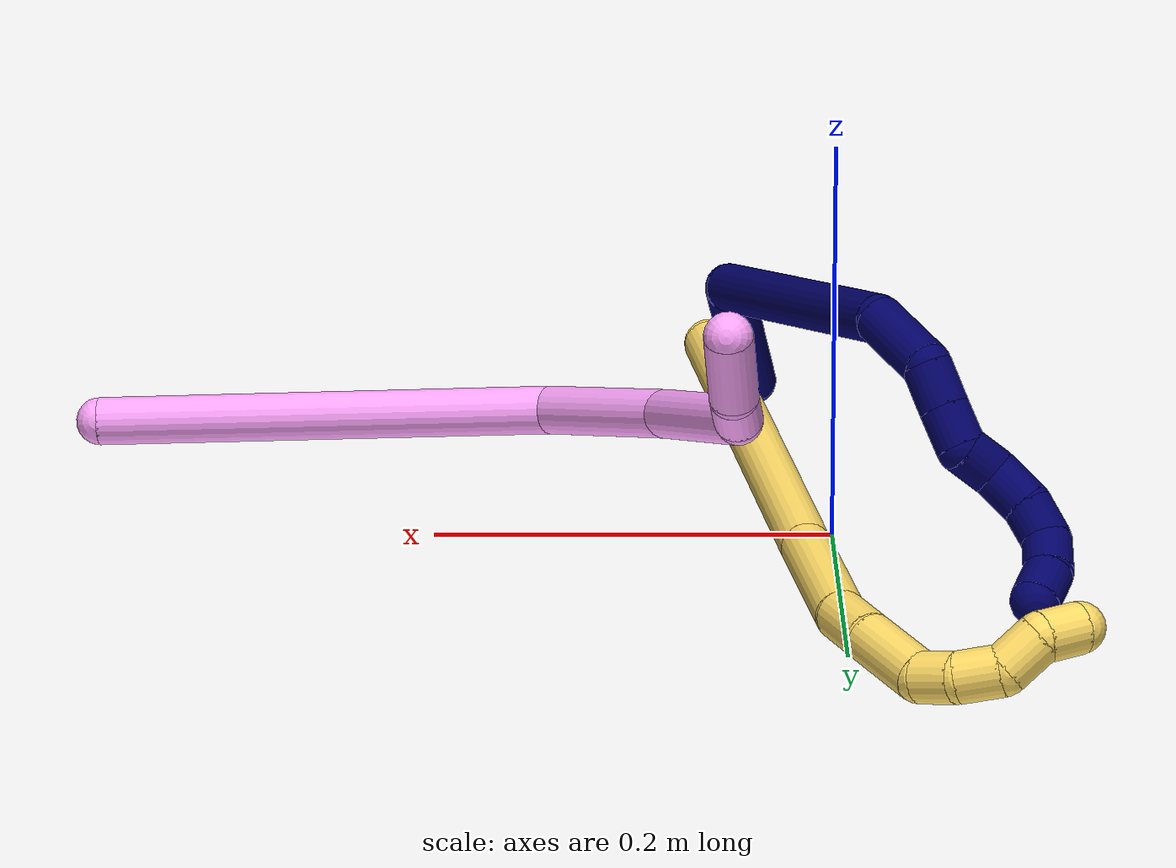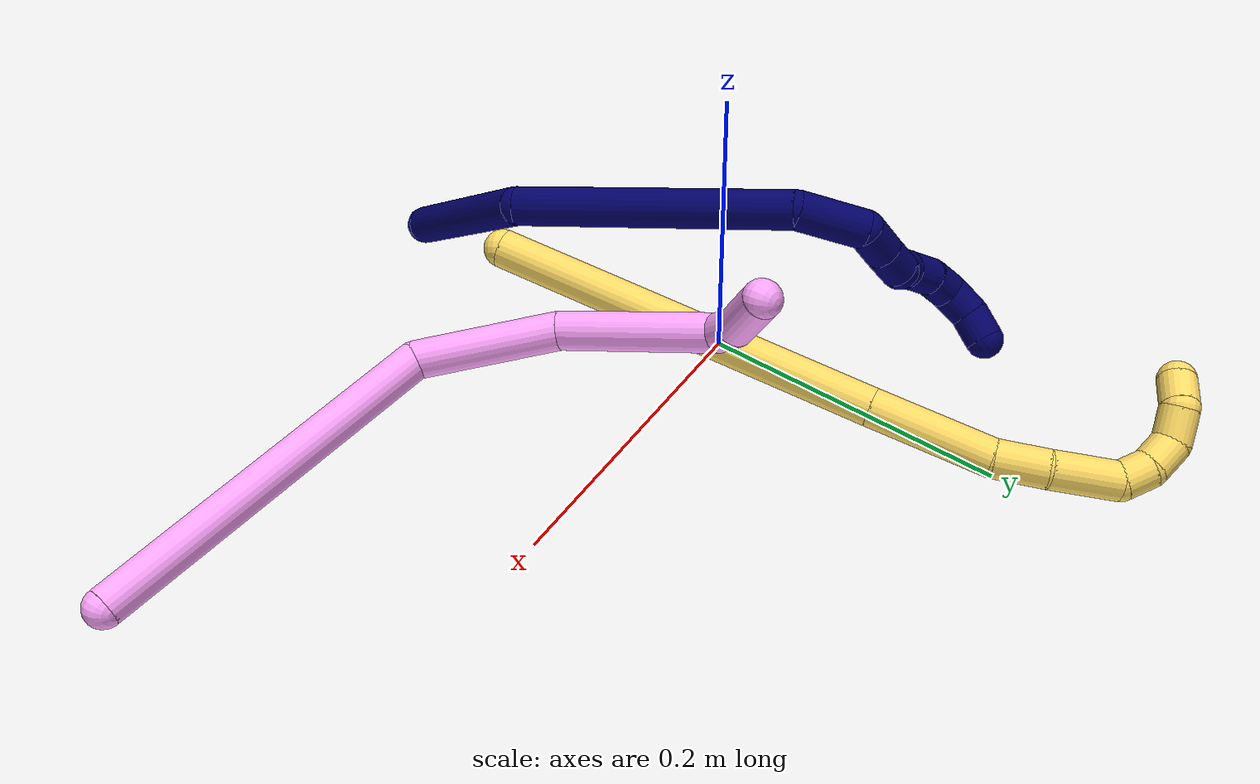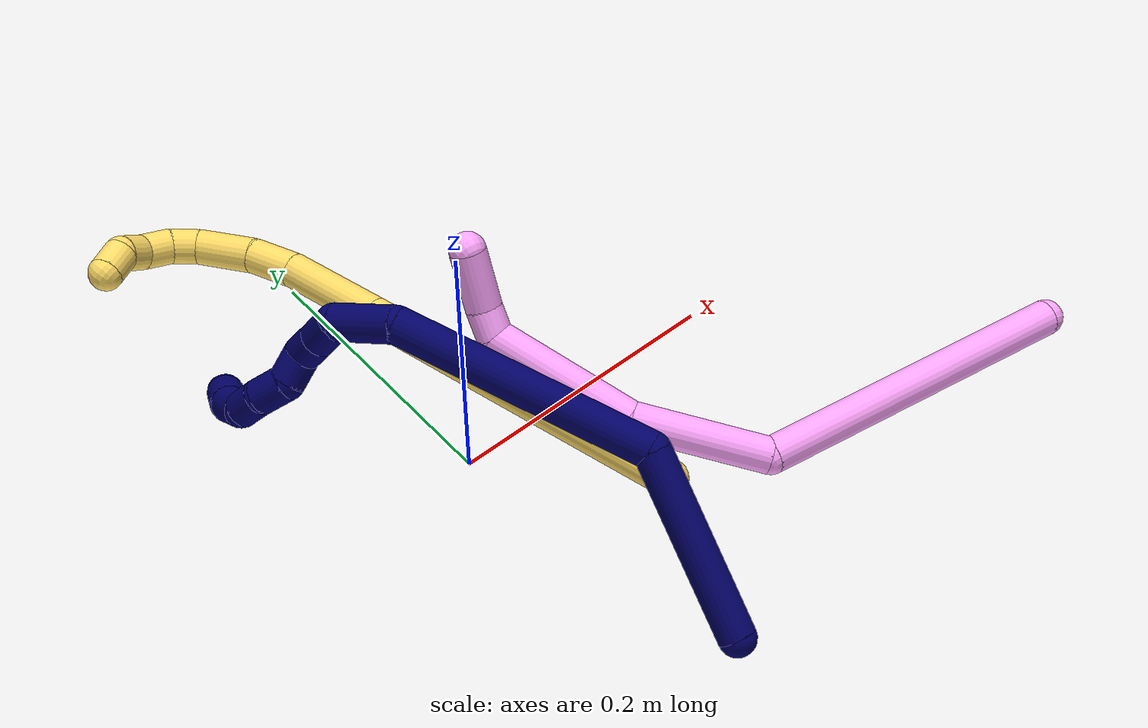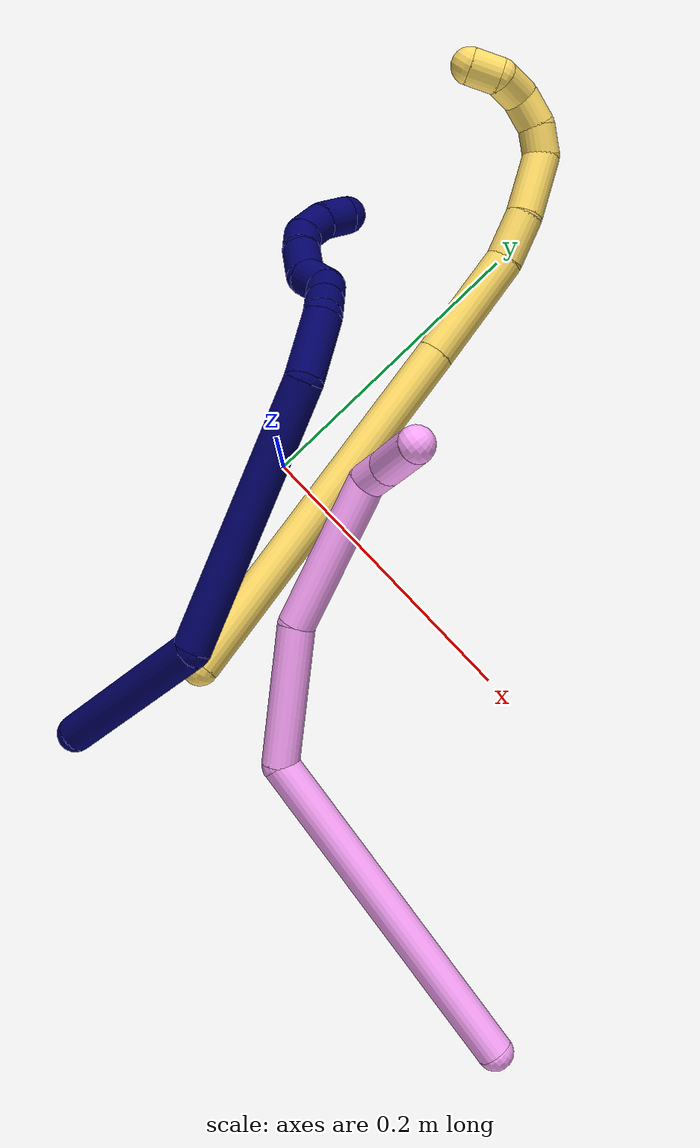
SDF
<sdf version="1.7">
 <world name="default">
  <model name="4">
   <static>0</static>
   <link name="4">
    <collision name="collision-cylinder-e_1_1_4">
     <pose>-0.107527 0.051839 -0.004027 -1.64833 -1.12039 1.19139</pose>
     <geometry><cylinder><radius>0.0125</radius><length>0.238876</length></cylinder></geometry>
     <surface>
      <friction><ode><mu>1.16</mu><mu2>1.16</mu2><slip1>0</slip1><slip2>0</slip2></ode></friction>
      <contact><ode><kp>1e+06</kp><kd>1</kd><max_vel>0</max_vel><min_depth>0.001</min_depth></ode></contact>
     </surface>
    </collision>
    <visual name="visual-cylinder-e_1_1_4">
     <pose>-0.107527 0.051839 -0.004027 -1.64833 -1.12039 1.19139</pose>
     <geometry><cylinder><radius>0.0125</radius><length>0.238876</length></cylinder></geometry>
     <material><ambient>1 0.65098 0.996078 1</ambient></material>
    </visual>
    <collision name="collision-cylinder-e_2_4_5">
     <pose>-0.245227 0.117463 -0.041724 -2.75298 -0.692384 2.14277</pose>
     <geometry><cylinder><radius>0.0125</radius><length>0.094532</length></cylinder></geometry>
     <surface>
      <friction><ode><mu>1.16</mu><mu2>1.16</mu2><slip1>0</slip1><slip2>0</slip2></ode></friction>
      <contact><ode><kp>1e+06</kp><kd>1</kd><max_vel>0</max_vel><min_depth>0.001</min_depth></ode></contact>
     </surface>
    </collision>
    <visual name="visual-cylinder-e_2_4_5">
     <pose>-0.245227 0.117463 -0.041724 -2.75298 -0.692384 2.14277</pose>
     <geometry><cylinder><radius>0.0125</radius><length>0.094532</length></cylinder></geometry>
     <material><ambient>1 0.65098 0.996078 1</ambient></material>
    </visual>
    <collision name="collision-cylinder-e_3_5_6">
     <pose>-0.295717 0.140423 -0.122538 -2.94938 -0.400183 2.25411</pose>
     <geometry><cylinder><radius>0.0125</radius><length>0.104299</length></cylinder></geometry>
     <surface>
      <friction><ode><mu>1.16</mu><mu2>1.16</mu2><slip1>0</slip1><slip2>0</slip2></ode></friction>
      <contact><ode><kp>1e+06</kp><kd>1</kd><max_vel>0</max_vel><min_depth>0.001</min_depth></ode></contact>
     </surface>
    </collision>
    <visual name="visual-cylinder-e_3_5_6">
     <pose>-0.295717 0.140423 -0.122538 -2.94938 -0.400183 2.25411</pose>
     <geometry><cylinder><radius>0.0125</radius><length>0.104299</length></cylinder></geometry>
     <material><ambient>1 0.65098 0.996078 1</ambient></material>
    </visual>
    <collision name="collision-cylinder-e_4_6_7">
     <pose>-0.313338 0.154614 -0.178378 -2.61845 0.262364 -0.915837</pose>
     <geometry><cylinder><radius>0.0125</radius><length>0.020788</length></cylinder></geometry>
     <surface>
      <friction><ode><mu>1.16</mu><mu2>1.16</mu2><slip1>0</slip1><slip2>0</slip2></ode></friction>
      <contact><ode><kp>1e+06</kp><kd>1</kd><max_vel>0</max_vel><min_depth>0.001</min_depth></ode></contact>
     </surface>
    </collision>
    <visual name="visual-cylinder-e_4_6_7">
     <pose>-0.313338 0.154614 -0.178378 -2.61845 0.262364 -0.915837</pose>
     <geometry><cylinder><radius>0.0125</radius><length>0.020788</length></cylinder></geometry>
     <material><ambient>1 0.65098 0.996078 1</ambient></material>
    </visual>
    <collision name="collision-cylinder-e_5_7_2">
     <pose>-0.303975 0.17368 -0.200813 -2.34495 0.327088 -0.747421</pose>
     <geometry><cylinder><radius>0.0125</radius><length>0.041504</length></cylinder></geometry>
     <surface>
      <friction><ode><mu>1.16</mu><mu2>1.16</mu2><slip1>0</slip1><slip2>0</slip2></ode></friction>
      <contact><ode><kp>1e+06</kp><kd>1</kd><max_vel>0</max_vel><min_depth>0.001</min_depth></ode></contact>
     </surface>
    </collision>
    <visual name="visual-cylinder-e_5_7_2">
     <pose>-0.303975 0.17368 -0.200813 -2.34495 0.327088 -0.747421</pose>
     <geometry><cylinder><radius>0.0125</radius><length>0.041504</length></cylinder></geometry>
     <material><ambient>1 0.65098 0.996078 1</ambient></material>
    </visual>
    <collision name="collision-sphere-2">
     <pose>-0.297308 0.187732 -0.214551 0 -0 0</pose>
     <geometry><sphere><radius>0.0125</radius></sphere></geometry>
     <surface>
      <friction><ode><mu>1.16</mu><mu2>1.16</mu2><slip1>0</slip1><slip2>0</slip2></ode></friction>
      <contact><ode><kp>1e+06</kp><kd>1</kd><max_vel>0</max_vel><min_depth>0.001</min_depth></ode></contact>
     </surface>
    </collision>
    <visual name="visual-sphere-2">
     <pose>-0.297308 0.187732 -0.214551 0 -0 0</pose>
     <geometry><sphere><radius>0.0125</radius></sphere></geometry>
     <material><ambient>1 0.65098 0.996078 1</ambient></material>
    </visual>
    <collision name="collision-sphere-7">
     <pose>-0.310642 0.159629 -0.187074 0 -0 0</pose>
     <geometry><sphere><radius>0.0125</radius></sphere></geometry>
     <surface>
      <friction><ode><mu>1.16</mu><mu2>1.16</mu2><slip1>0</slip1><slip2>0</slip2></ode></friction>
      <contact><ode><kp>1e+06</kp><kd>1</kd><max_vel>0</max_vel><min_depth>0.001</min_depth></ode></contact>
     </surface>
    </collision>
    <visual name="visual-sphere-7">
     <pose>-0.310642 0.159629 -0.187074 0 -0 0</pose>
     <geometry><sphere><radius>0.0125</radius></sphere></geometry>
     <material><ambient>1 0.65098 0.996078 1</ambient></material>
    </visual>
    <collision name="collision-sphere-6">
     <pose>-0.316034 0.149599 -0.169682 0 -0 0</pose>
     <geometry><sphere><radius>0.0125</radius></sphere></geometry>
     <surface>
      <friction><ode><mu>1.16</mu><mu2>1.16</mu2><slip1>0</slip1><slip2>0</slip2></ode></friction>
      <contact><ode><kp>1e+06</kp><kd>1</kd><max_vel>0</max_vel><min_depth>0.001</min_depth></ode></contact>
     </surface>
    </collision>
    <visual name="visual-sphere-6">
     <pose>-0.316034 0.149599 -0.169682 0 -0 0</pose>
     <geometry><sphere><radius>0.0125</radius></sphere></geometry>
     <material><ambient>1 0.65098 0.996078 1</ambient></material>
    </visual>
    <collision name="collision-sphere-5">
     <pose>-0.2754 0.131248 -0.075393 0 -0 0</pose>
     <geometry><sphere><radius>0.0125</radius></sphere></geometry>
     <surface>
      <friction><ode><mu>1.16</mu><mu2>1.16</mu2><slip1>0</slip1><slip2>0</slip2></ode></friction>
      <contact><ode><kp>1e+06</kp><kd>1</kd><max_vel>0</max_vel><min_depth>0.001</min_depth></ode></contact>
     </surface>
    </collision>
    <visual name="visual-sphere-5">
     <pose>-0.2754 0.131248 -0.075393 0 -0 0</pose>
     <geometry><sphere><radius>0.0125</radius></sphere></geometry>
     <material><ambient>1 0.65098 0.996078 1</ambient></material>
    </visual>
    <collision name="collision-sphere-1">
     <geometry><sphere><radius>0.0125</radius></sphere></geometry>
     <surface>
      <friction><ode><mu>1.16</mu><mu2>1.16</mu2><slip1>0</slip1><slip2>0</slip2></ode></friction>
      <contact><ode><kp>1e+06</kp><kd>1</kd><max_vel>0</max_vel><min_depth>0.001</min_depth></ode></contact>
     </surface>
    </collision>
    <visual name="visual-sphere-1">
     <geometry><sphere><radius>0.0125</radius></sphere></geometry>
     <material><ambient>1 0.65098 0.996078 1</ambient></material>
    </visual>
    <collision name="collision-sphere-4">
     <pose>-0.215053 0.103678 -0.008054 0 -0 0</pose>
     <geometry><sphere><radius>0.0125</radius></sphere></geometry>
     <surface>
      <friction><ode><mu>1.16</mu><mu2>1.16</mu2><slip1>0</slip1><slip2>0</slip2></ode></friction>
      <contact><ode><kp>1e+06</kp><kd>1</kd><max_vel>0</max_vel><min_depth>0.001</min_depth></ode></contact>
     </surface>
    </collision>
    <visual name="visual-sphere-4">
     <pose>-0.215053 0.103678 -0.008054 0 -0 0</pose>
     <geometry><sphere><radius>0.0125</radius></sphere></geometry>
     <material><ambient>1 0.65098 0.996078 1</ambient></material>
    </visual>
    <inertial>
     <pose>-0.197681 0.097111 -0.059459 0 -0 0</pose>
     <mass>0.5</mass>
     <inertia>
      <ixx>0.000655</ixx>
      <ixy>0</ixy>
      <ixz>0</ixz>
      <iyy>0.001628</iyy>
      <iyz>0</iyz>
      <izz>0.000555</izz>
     </inertia>
    </inertial>
   </link>
   <pose>0.378631 -0.167894 0.01154 1.82999 -0.382852 -0.204085</pose>
  </model>
  <model name="5">
   <static>0</static>
   <link name="5">
    <collision name="collision-cylinder-e_1_1_4">
     <pose>-0.013844 0.055192 0.11492 -0.447739 -0.108167 0.024651</pose>
     <geometry><cylinder><radius>0.0125</radius><length>0.256472</length></cylinder></geometry>
     <surface>
      <friction><ode><mu>1.16</mu><mu2>1.16</mu2><slip1>0</slip1><slip2>0</slip2></ode></friction>
      <contact><ode><kp>1e+06</kp><kd>1</kd><max_vel>0</max_vel><min_depth>0.001</min_depth></ode></contact>
     </surface>
    </collision>
    <visual name="visual-cylinder-e_1_1_4">
     <pose>-0.013844 0.055192 0.11492 -0.447739 -0.108167 0.024651</pose>
     <geometry><cylinder><radius>0.0125</radius><length>0.256472</length></cylinder></geometry>
     <material><ambient>1 0.858824 0.4 1</ambient></material>
    </visual>
    <collision name="collision-cylinder-e_2_4_5">
     <pose>-0.032205 0.127178 0.265533 -0.43975 -0.114022 0.025509</pose>
     <geometry><cylinder><radius>0.0125</radius><length>0.079408</length></cylinder></geometry>
     <surface>
      <friction><ode><mu>1.16</mu><mu2>1.16</mu2><slip1>0</slip1><slip2>0</slip2></ode></friction>
      <contact><ode><kp>1e+06</kp><kd>1</kd><max_vel>0</max_vel><min_depth>0.001</min_depth></ode></contact>
     </surface>
    </collision>
    <visual name="visual-cylinder-e_2_4_5">
     <pose>-0.032205 0.127178 0.265533 -0.43975 -0.114022 0.025509</pose>
     <geometry><cylinder><radius>0.0125</radius><length>0.079408</length></cylinder></geometry>
     <material><ambient>1 0.858824 0.4 1</ambient></material>
    </visual>
    <collision name="collision-cylinder-e_3_5_6">
     <pose>-0.041269 0.148491 0.316745 -0.28344 -0.274212 0.039365</pose>
     <geometry><cylinder><radius>0.0125</radius><length>0.033582</length></cylinder></geometry>
     <surface>
      <friction><ode><mu>1.16</mu><mu2>1.16</mu2><slip1>0</slip1><slip2>0</slip2></ode></friction>
      <contact><ode><kp>1e+06</kp><kd>1</kd><max_vel>0</max_vel><min_depth>0.001</min_depth></ode></contact>
     </surface>
    </collision>
    <visual name="visual-cylinder-e_3_5_6">
     <pose>-0.041269 0.148491 0.316745 -0.28344 -0.274212 0.039365</pose>
     <geometry><cylinder><radius>0.0125</radius><length>0.033582</length></cylinder></geometry>
     <material><ambient>1 0.858824 0.4 1</ambient></material>
    </visual>
    <collision name="collision-cylinder-e_4_6_7">
     <pose>-0.055185 0.159573 0.351209 -0.333439 -0.437145 0.074723</pose>
     <geometry><cylinder><radius>0.0125</radius><length>0.044262</length></cylinder></geometry>
     <surface>
      <friction><ode><mu>1.16</mu><mu2>1.16</mu2><slip1>0</slip1><slip2>0</slip2></ode></friction>
      <contact><ode><kp>1e+06</kp><kd>1</kd><max_vel>0</max_vel><min_depth>0.001</min_depth></ode></contact>
     </surface>
    </collision>
    <visual name="visual-cylinder-e_4_6_7">
     <pose>-0.055185 0.159573 0.351209 -0.333439 -0.437145 0.074723</pose>
     <geometry><cylinder><radius>0.0125</radius><length>0.044262</length></cylinder></geometry>
     <material><ambient>1 0.858824 0.4 1</ambient></material>
    </visual>
    <collision name="collision-cylinder-e_5_7_8">
     <pose>-0.070927 0.163941 0.377716 0.28247 -0.680361 -0.100563</pose>
     <geometry><cylinder><radius>0.0125</radius><length>0.020259</length></cylinder></geometry>
     <surface>
      <friction><ode><mu>1.16</mu><mu2>1.16</mu2><slip1>0</slip1><slip2>0</slip2></ode></friction>
      <contact><ode><kp>1e+06</kp><kd>1</kd><max_vel>0</max_vel><min_depth>0.001</min_depth></ode></contact>
     </surface>
    </collision>
    <visual name="visual-cylinder-e_5_7_8">
     <pose>-0.070927 0.163941 0.377716 0.28247 -0.680361 -0.100563</pose>
     <geometry><cylinder><radius>0.0125</radius><length>0.020259</length></cylinder></geometry>
     <material><ambient>1 0.858824 0.4 1</ambient></material>
    </visual>
    <collision name="collision-cylinder-e_6_8_9">
     <pose>-0.085712 0.156786 0.390534 0.756487 -0.861138 -0.361064</pose>
     <geometry><cylinder><radius>0.0125</radius><length>0.02218</length></cylinder></geometry>
     <surface>
      <friction><ode><mu>1.16</mu><mu2>1.16</mu2><slip1>0</slip1><slip2>0</slip2></ode></friction>
      <contact><ode><kp>1e+06</kp><kd>1</kd><max_vel>0</max_vel><min_depth>0.001</min_depth></ode></contact>
     </surface>
    </collision>
    <visual name="visual-cylinder-e_6_8_9">
     <pose>-0.085712 0.156786 0.390534 0.756487 -0.861138 -0.361064</pose>
     <geometry><cylinder><radius>0.0125</radius><length>0.02218</length></cylinder></geometry>
     <material><ambient>1 0.858824 0.4 1</ambient></material>
    </visual>
    <collision name="collision-cylinder-e_7_9_10">
     <pose>-0.099043 0.141907 0.397938 1.35745 -0.451234 -0.366104</pose>
     <geometry><cylinder><radius>0.0125</radius><length>0.022556</length></cylinder></geometry>
     <surface>
      <friction><ode><mu>1.16</mu><mu2>1.16</mu2><slip1>0</slip1><slip2>0</slip2></ode></friction>
      <contact><ode><kp>1e+06</kp><kd>1</kd><max_vel>0</max_vel><min_depth>0.001</min_depth></ode></contact>
     </surface>
    </collision>
    <visual name="visual-cylinder-e_7_9_10">
     <pose>-0.099043 0.141907 0.397938 1.35745 -0.451234 -0.366104</pose>
     <geometry><cylinder><radius>0.0125</radius><length>0.022556</length></cylinder></geometry>
     <material><ambient>1 0.858824 0.4 1</ambient></material>
    </visual>
    <collision name="collision-cylinder-e_8_10_2">
     <pose>-0.112664 0.126237 0.397988 1.92074 -0.957739 -1.27692</pose>
     <geometry><cylinder><radius>0.0125</radius><length>0.021281</length></cylinder></geometry>
     <surface>
      <friction><ode><mu>1.16</mu><mu2>1.16</mu2><slip1>0</slip1><slip2>0</slip2></ode></friction>
      <contact><ode><kp>1e+06</kp><kd>1</kd><max_vel>0</max_vel><min_depth>0.001</min_depth></ode></contact>
     </surface>
    </collision>
    <visual name="visual-cylinder-e_8_10_2">
     <pose>-0.112664 0.126237 0.397988 1.92074 -0.957739 -1.27692</pose>
     <geometry><cylinder><radius>0.0125</radius><length>0.021281</length></cylinder></geometry>
     <material><ambient>1 0.858824 0.4 1</ambient></material>
    </visual>
    <collision name="collision-sphere-2">
     <pose>-0.121367 0.120485 0.395888 0 -0 0</pose>
     <geometry><sphere><radius>0.0125</radius></sphere></geometry>
     <surface>
      <friction><ode><mu>1.16</mu><mu2>1.16</mu2><slip1>0</slip1><slip2>0</slip2></ode></friction>
      <contact><ode><kp>1e+06</kp><kd>1</kd><max_vel>0</max_vel><min_depth>0.001</min_depth></ode></contact>
     </surface>
    </collision>
    <visual name="visual-sphere-2">
     <pose>-0.121367 0.120485 0.395888 0 -0 0</pose>
     <geometry><sphere><radius>0.0125</radius></sphere></geometry>
     <material><ambient>1 0.858824 0.4 1</ambient></material>
    </visual>
    <collision name="collision-sphere-10">
     <pose>-0.103961 0.131988 0.400087 0 -0 0</pose>
     <geometry><sphere><radius>0.0125</radius></sphere></geometry>
     <surface>
      <friction><ode><mu>1.16</mu><mu2>1.16</mu2><slip1>0</slip1><slip2>0</slip2></ode></friction>
      <contact><ode><kp>1e+06</kp><kd>1</kd><max_vel>0</max_vel><min_depth>0.001</min_depth></ode></contact>
     </surface>
    </collision>
    <visual name="visual-sphere-10">
     <pose>-0.103961 0.131988 0.400087 0 -0 0</pose>
     <geometry><sphere><radius>0.0125</radius></sphere></geometry>
     <material><ambient>1 0.858824 0.4 1</ambient></material>
    </visual>
    <collision name="collision-sphere-9">
     <pose>-0.094124 0.151826 0.395789 0 -0 0</pose>
     <geometry><sphere><radius>0.0125</radius></sphere></geometry>
     <surface>
      <friction><ode><mu>1.16</mu><mu2>1.16</mu2><slip1>0</slip1><slip2>0</slip2></ode></friction>
      <contact><ode><kp>1e+06</kp><kd>1</kd><max_vel>0</max_vel><min_depth>0.001</min_depth></ode></contact>
     </surface>
    </collision>
    <visual name="visual-sphere-9">
     <pose>-0.094124 0.151826 0.395789 0 -0 0</pose>
     <geometry><sphere><radius>0.0125</radius></sphere></geometry>
     <material><ambient>1 0.858824 0.4 1</ambient></material>
    </visual>
    <collision name="collision-sphere-4">
     <pose>-0.027688 0.110385 0.22984 0 -0 0</pose>
     <geometry><sphere><radius>0.0125</radius></sphere></geometry>
     <surface>
      <friction><ode><mu>1.16</mu><mu2>1.16</mu2><slip1>0</slip1><slip2>0</slip2></ode></friction>
      <contact><ode><kp>1e+06</kp><kd>1</kd><max_vel>0</max_vel><min_depth>0.001</min_depth></ode></contact>
     </surface>
    </collision>
    <visual name="visual-sphere-4">
     <pose>-0.027688 0.110385 0.22984 0 -0 0</pose>
     <geometry><sphere><radius>0.0125</radius></sphere></geometry>
     <material><ambient>1 0.858824 0.4 1</ambient></material>
    </visual>
    <collision name="collision-sphere-1">
     <geometry><sphere><radius>0.0125</radius></sphere></geometry>
     <surface>
      <friction><ode><mu>1.16</mu><mu2>1.16</mu2><slip1>0</slip1><slip2>0</slip2></ode></friction>
      <contact><ode><kp>1e+06</kp><kd>1</kd><max_vel>0</max_vel><min_depth>0.001</min_depth></ode></contact>
     </surface>
    </collision>
    <visual name="visual-sphere-1">
     <geometry><sphere><radius>0.0125</radius></sphere></geometry>
     <material><ambient>1 0.858824 0.4 1</ambient></material>
    </visual>
    <collision name="collision-sphere-8">
     <pose>-0.077299 0.161746 0.385279 0 -0 0</pose>
     <geometry><sphere><radius>0.0125</radius></sphere></geometry>
     <surface>
      <friction><ode><mu>1.16</mu><mu2>1.16</mu2><slip1>0</slip1><slip2>0</slip2></ode></friction>
      <contact><ode><kp>1e+06</kp><kd>1</kd><max_vel>0</max_vel><min_depth>0.001</min_depth></ode></contact>
     </surface>
    </collision>
    <visual name="visual-sphere-8">
     <pose>-0.077299 0.161746 0.385279 0 -0 0</pose>
     <geometry><sphere><radius>0.0125</radius></sphere></geometry>
     <material><ambient>1 0.858824 0.4 1</ambient></material>
    </visual>
    <collision name="collision-sphere-5">
     <pose>-0.036722 0.14397 0.301226 0 -0 0</pose>
     <geometry><sphere><radius>0.0125</radius></sphere></geometry>
     <surface>
      <friction><ode><mu>1.16</mu><mu2>1.16</mu2><slip1>0</slip1><slip2>0</slip2></ode></friction>
      <contact><ode><kp>1e+06</kp><kd>1</kd><max_vel>0</max_vel><min_depth>0.001</min_depth></ode></contact>
     </surface>
    </collision>
    <visual name="visual-sphere-5">
     <pose>-0.036722 0.14397 0.301226 0 -0 0</pose>
     <geometry><sphere><radius>0.0125</radius></sphere></geometry>
     <material><ambient>1 0.858824 0.4 1</ambient></material>
    </visual>
    <collision name="collision-sphere-6">
     <pose>-0.045816 0.153011 0.332263 0 -0 0</pose>
     <geometry><sphere><radius>0.0125</radius></sphere></geometry>
     <surface>
      <friction><ode><mu>1.16</mu><mu2>1.16</mu2><slip1>0</slip1><slip2>0</slip2></ode></friction>
      <contact><ode><kp>1e+06</kp><kd>1</kd><max_vel>0</max_vel><min_depth>0.001</min_depth></ode></contact>
     </surface>
    </collision>
    <visual name="visual-sphere-6">
     <pose>-0.045816 0.153011 0.332263 0 -0 0</pose>
     <geometry><sphere><radius>0.0125</radius></sphere></geometry>
     <material><ambient>1 0.858824 0.4 1</ambient></material>
    </visual>
    <collision name="collision-sphere-7">
     <pose>-0.064554 0.166135 0.370154 0 -0 0</pose>
     <geometry><sphere><radius>0.0125</radius></sphere></geometry>
     <surface>
      <friction><ode><mu>1.16</mu><mu2>1.16</mu2><slip1>0</slip1><slip2>0</slip2></ode></friction>
      <contact><ode><kp>1e+06</kp><kd>1</kd><max_vel>0</max_vel><min_depth>0.001</min_depth></ode></contact>
     </surface>
    </collision>
    <visual name="visual-sphere-7">
     <pose>-0.064554 0.166135 0.370154 0 -0 0</pose>
     <geometry><sphere><radius>0.0125</radius></sphere></geometry>
     <material><ambient>1 0.858824 0.4 1</ambient></material>
    </visual>
    <inertial>
     <pose>-0.035812 0.09798 0.221002 0 -0 0</pose>
     <mass>0.5</mass>
     <inertia>
      <ixx>0.001493</ixx>
      <ixy>0</ixy>
      <ixz>0</ixz>
      <iyy>0.00138</iyy>
      <iyz>0</iyz>
      <izz>-0.00043</izz>
     </inertia>
    </inertial>
   </link>
   <pose>0.059725 -0.128686 0.064507 -1.21935 -0.416219 0.105883</pose>
  </model>
  <model name="7">
   <static>0</static>
   <link name="7">
    <collision name="collision-cylinder-e_1_1_4">
     <pose>-0.053857 0.003614 0.033499 -0.107455 -1.01176 0.059566</pose>
     <geometry><cylinder><radius>0.0125</radius><length>0.127055</length></cylinder></geometry>
     <surface>
      <friction><ode><mu>1.16</mu><mu2>1.16</mu2><slip1>0</slip1><slip2>0</slip2></ode></friction>
      <contact><ode><kp>1e+06</kp><kd>1</kd><max_vel>0</max_vel><min_depth>0.001</min_depth></ode></contact>
     </surface>
    </collision>
    <visual name="visual-cylinder-e_1_1_4">
     <pose>-0.053857 0.003614 0.033499 -0.107455 -1.01176 0.059566</pose>
     <geometry><cylinder><radius>0.0125</radius><length>0.127055</length></cylinder></geometry>
     <material><ambient>0.003922 0 0.403922 1</ambient></material>
    </visual>
    <collision name="collision-cylinder-e_2_4_5">
     <pose>-0.13992 0.050092 0.13845 -0.540344 -0.368832 0.103228</pose>
     <geometry><cylinder><radius>0.0125</radius><length>0.178663</length></cylinder></geometry>
     <surface>
      <friction><ode><mu>1.16</mu><mu2>1.16</mu2><slip1>0</slip1><slip2>0</slip2></ode></friction>
      <contact><ode><kp>1e+06</kp><kd>1</kd><max_vel>0</max_vel><min_depth>0.001</min_depth></ode></contact>
     </surface>
    </collision>
    <visual name="visual-cylinder-e_2_4_5">
     <pose>-0.13992 0.050092 0.13845 -0.540344 -0.368832 0.103228</pose>
     <geometry><cylinder><radius>0.0125</radius><length>0.178663</length></cylinder></geometry>
     <material><ambient>0.003922 0 0.403922 1</ambient></material>
    </visual>
    <collision name="collision-cylinder-e_3_5_6">
     <pose>-0.169787 0.103813 0.229465 -0.506679 0.104173 -0.026993</pose>
     <geometry><cylinder><radius>0.0125</radius><length>0.04499</length></cylinder></geometry>
     <surface>
      <friction><ode><mu>1.16</mu><mu2>1.16</mu2><slip1>0</slip1><slip2>0</slip2></ode></friction>
      <contact><ode><kp>1e+06</kp><kd>1</kd><max_vel>0</max_vel><min_depth>0.001</min_depth></ode></contact>
     </surface>
    </collision>
    <visual name="visual-cylinder-e_3_5_6">
     <pose>-0.169787 0.103813 0.229465 -0.506679 0.104173 -0.026993</pose>
     <geometry><cylinder><radius>0.0125</radius><length>0.04499</length></cylinder></geometry>
     <material><ambient>0.003922 0 0.403922 1</ambient></material>
    </visual>
    <collision name="collision-cylinder-e_4_6_7">
     <pose>-0.159408 0.117292 0.256825 -0.324412 0.773886 -0.133168</pose>
     <geometry><cylinder><radius>0.0125</radius><length>0.023007</length></cylinder></geometry>
     <surface>
      <friction><ode><mu>1.16</mu><mu2>1.16</mu2><slip1>0</slip1><slip2>0</slip2></ode></friction>
      <contact><ode><kp>1e+06</kp><kd>1</kd><max_vel>0</max_vel><min_depth>0.001</min_depth></ode></contact>
     </surface>
    </collision>
    <visual name="visual-cylinder-e_4_6_7">
     <pose>-0.159408 0.117292 0.256825 -0.324412 0.773886 -0.133168</pose>
     <geometry><cylinder><radius>0.0125</radius><length>0.023007</length></cylinder></geometry>
     <material><ambient>0.003922 0 0.403922 1</ambient></material>
    </visual>
    <collision name="collision-cylinder-e_5_7_8">
     <pose>-0.144107 0.122542 0.271874 -0.347586 0.755343 -0.139074</pose>
     <geometry><cylinder><radius>0.0125</radius><length>0.021185</length></cylinder></geometry>
     <surface>
      <friction><ode><mu>1.16</mu><mu2>1.16</mu2><slip1>0</slip1><slip2>0</slip2></ode></friction>
      <contact><ode><kp>1e+06</kp><kd>1</kd><max_vel>0</max_vel><min_depth>0.001</min_depth></ode></contact>
     </surface>
    </collision>
    <visual name="visual-cylinder-e_5_7_8">
     <pose>-0.144107 0.122542 0.271874 -0.347586 0.755343 -0.139074</pose>
     <geometry><cylinder><radius>0.0125</radius><length>0.021185</length></cylinder></geometry>
     <material><ambient>0.003922 0 0.403922 1</ambient></material>
    </visual>
    <collision name="collision-cylinder-e_6_8_9">
     <pose>-0.12871 0.131707 0.280005 -1.43697 0.8894 -0.789598</pose>
     <geometry><cylinder><radius>0.0125</radius><length>0.020948</length></cylinder></geometry>
     <surface>
      <friction><ode><mu>1.16</mu><mu2>1.16</mu2><slip1>0</slip1><slip2>0</slip2></ode></friction>
      <contact><ode><kp>1e+06</kp><kd>1</kd><max_vel>0</max_vel><min_depth>0.001</min_depth></ode></contact>
     </surface>
    </collision>
    <visual name="visual-cylinder-e_6_8_9">
     <pose>-0.12871 0.131707 0.280005 -1.43697 0.8894 -0.789598</pose>
     <geometry><cylinder><radius>0.0125</radius><length>0.020948</length></cylinder></geometry>
     <material><ambient>0.003922 0 0.403922 1</ambient></material>
    </visual>
    <collision name="collision-cylinder-e_7_9_10">
     <pose>-0.114602 0.145078 0.288284 -0.745661 0.53525 -0.213678</pose>
     <geometry><cylinder><radius>0.0125</radius><length>0.023417</length></cylinder></geometry>
     <surface>
      <friction><ode><mu>1.16</mu><mu2>1.16</mu2><slip1>0</slip1><slip2>0</slip2></ode></friction>
      <contact><ode><kp>1e+06</kp><kd>1</kd><max_vel>0</max_vel><min_depth>0.001</min_depth></ode></contact>
     </surface>
    </collision>
    <visual name="visual-cylinder-e_7_9_10">
     <pose>-0.114602 0.145078 0.288284 -0.745661 0.53525 -0.213678</pose>
     <geometry><cylinder><radius>0.0125</radius><length>0.023417</length></cylinder></geometry>
     <material><ambient>0.003922 0 0.403922 1</ambient></material>
    </visual>
    <collision name="collision-cylinder-e_8_10_11">
     <pose>-0.10256 0.155428 0.302887 -0.454179 0.648051 -0.154909</pose>
     <geometry><cylinder><radius>0.0125</radius><length>0.020114</length></cylinder></geometry>
     <surface>
      <friction><ode><mu>1.16</mu><mu2>1.16</mu2><slip1>0</slip1><slip2>0</slip2></ode></friction>
      <contact><ode><kp>1e+06</kp><kd>1</kd><max_vel>0</max_vel><min_depth>0.001</min_depth></ode></contact>
     </surface>
    </collision>
    <visual name="visual-cylinder-e_8_10_11">
     <pose>-0.10256 0.155428 0.302887 -0.454179 0.648051 -0.154909</pose>
     <geometry><cylinder><radius>0.0125</radius><length>0.020114</length></cylinder></geometry>
     <material><ambient>0.003922 0 0.403922 1</ambient></material>
    </visual>
    <collision name="collision-cylinder-e_9_11_12">
     <pose>-0.094441 0.158514 0.320181 0.042829 0.20013 0.004301</pose>
     <geometry><cylinder><radius>0.0125</radius><length>0.020607</length></cylinder></geometry>
     <surface>
      <friction><ode><mu>1.16</mu><mu2>1.16</mu2><slip1>0</slip1><slip2>0</slip2></ode></friction>
      <contact><ode><kp>1e+06</kp><kd>1</kd><max_vel>0</max_vel><min_depth>0.001</min_depth></ode></contact>
     </surface>
    </collision>
    <visual name="visual-cylinder-e_9_11_12">
     <pose>-0.094441 0.158514 0.320181 0.042829 0.20013 0.004301</pose>
     <geometry><cylinder><radius>0.0125</radius><length>0.020607</length></cylinder></geometry>
     <material><ambient>0.003922 0 0.403922 1</ambient></material>
    </visual>
    <collision name="collision-cylinder-e_10_12_2">
     <pose>-0.091594 0.154258 0.339483 0.393326 0.079892 0.015926</pose>
     <geometry><cylinder><radius>0.0125</radius><length>0.020014</length></cylinder></geometry>
     <surface>
      <friction><ode><mu>1.16</mu><mu2>1.16</mu2><slip1>0</slip1><slip2>0</slip2></ode></friction>
      <contact><ode><kp>1e+06</kp><kd>1</kd><max_vel>0</max_vel><min_depth>0.001</min_depth></ode></contact>
     </surface>
    </collision>
    <visual name="visual-cylinder-e_10_12_2">
     <pose>-0.091594 0.154258 0.339483 0.393326 0.079892 0.015926</pose>
     <geometry><cylinder><radius>0.0125</radius><length>0.020014</length></cylinder></geometry>
     <material><ambient>0.003922 0 0.403922 1</ambient></material>
    </visual>
    <collision name="collision-sphere-2">
     <pose>-0.090795 0.150435 0.348696 0 -0 0</pose>
     <geometry><sphere><radius>0.0125</radius></sphere></geometry>
     <surface>
      <friction><ode><mu>1.16</mu><mu2>1.16</mu2><slip1>0</slip1><slip2>0</slip2></ode></friction>
      <contact><ode><kp>1e+06</kp><kd>1</kd><max_vel>0</max_vel><min_depth>0.001</min_depth></ode></contact>
     </surface>
    </collision>
    <visual name="visual-sphere-2">
     <pose>-0.090795 0.150435 0.348696 0 -0 0</pose>
     <geometry><sphere><radius>0.0125</radius></sphere></geometry>
     <material><ambient>0.003922 0 0.403922 1</ambient></material>
    </visual>
    <collision name="collision-sphere-12">
     <pose>-0.092393 0.158081 0.330269 0 -0 0</pose>
     <geometry><sphere><radius>0.0125</radius></sphere></geometry>
     <surface>
      <friction><ode><mu>1.16</mu><mu2>1.16</mu2><slip1>0</slip1><slip2>0</slip2></ode></friction>
      <contact><ode><kp>1e+06</kp><kd>1</kd><max_vel>0</max_vel><min_depth>0.001</min_depth></ode></contact>
     </surface>
    </collision>
    <visual name="visual-sphere-12">
     <pose>-0.092393 0.158081 0.330269 0 -0 0</pose>
     <geometry><sphere><radius>0.0125</radius></sphere></geometry>
     <material><ambient>0.003922 0 0.403922 1</ambient></material>
    </visual>
    <collision name="collision-sphere-11">
     <pose>-0.096489 0.158946 0.310092 0 -0 0</pose>
     <geometry><sphere><radius>0.0125</radius></sphere></geometry>
     <surface>
      <friction><ode><mu>1.16</mu><mu2>1.16</mu2><slip1>0</slip1><slip2>0</slip2></ode></friction>
      <contact><ode><kp>1e+06</kp><kd>1</kd><max_vel>0</max_vel><min_depth>0.001</min_depth></ode></contact>
     </surface>
    </collision>
    <visual name="visual-sphere-11">
     <pose>-0.096489 0.158946 0.310092 0 -0 0</pose>
     <geometry><sphere><radius>0.0125</radius></sphere></geometry>
     <material><ambient>0.003922 0 0.403922 1</ambient></material>
    </visual>
    <collision name="collision-sphere-10">
     <pose>-0.108631 0.151911 0.295682 0 -0 0</pose>
     <geometry><sphere><radius>0.0125</radius></sphere></geometry>
     <surface>
      <friction><ode><mu>1.16</mu><mu2>1.16</mu2><slip1>0</slip1><slip2>0</slip2></ode></friction>
      <contact><ode><kp>1e+06</kp><kd>1</kd><max_vel>0</max_vel><min_depth>0.001</min_depth></ode></contact>
     </surface>
    </collision>
    <visual name="visual-sphere-10">
     <pose>-0.108631 0.151911 0.295682 0 -0 0</pose>
     <geometry><sphere><radius>0.0125</radius></sphere></geometry>
     <material><ambient>0.003922 0 0.403922 1</ambient></material>
    </visual>
    <collision name="collision-sphere-9">
     <pose>-0.120574 0.138246 0.280885 0 -0 0</pose>
     <geometry><sphere><radius>0.0125</radius></sphere></geometry>
     <surface>
      <friction><ode><mu>1.16</mu><mu2>1.16</mu2><slip1>0</slip1><slip2>0</slip2></ode></friction>
      <contact><ode><kp>1e+06</kp><kd>1</kd><max_vel>0</max_vel><min_depth>0.001</min_depth></ode></contact>
     </surface>
    </collision>
    <visual name="visual-sphere-9">
     <pose>-0.120574 0.138246 0.280885 0 -0 0</pose>
     <geometry><sphere><radius>0.0125</radius></sphere></geometry>
     <material><ambient>0.003922 0 0.403922 1</ambient></material>
    </visual>
    <collision name="collision-sphere-4">
     <pose>-0.107713 0.007227 0.066997 0 -0 0</pose>
     <geometry><sphere><radius>0.0125</radius></sphere></geometry>
     <surface>
      <friction><ode><mu>1.16</mu><mu2>1.16</mu2><slip1>0</slip1><slip2>0</slip2></ode></friction>
      <contact><ode><kp>1e+06</kp><kd>1</kd><max_vel>0</max_vel><min_depth>0.001</min_depth></ode></contact>
     </surface>
    </collision>
    <visual name="visual-sphere-4">
     <pose>-0.107713 0.007227 0.066997 0 -0 0</pose>
     <geometry><sphere><radius>0.0125</radius></sphere></geometry>
     <material><ambient>0.003922 0 0.403922 1</ambient></material>
    </visual>
    <collision name="collision-sphere-1">
     <geometry><sphere><radius>0.0125</radius></sphere></geometry>
     <surface>
      <friction><ode><mu>1.16</mu><mu2>1.16</mu2><slip1>0</slip1><slip2>0</slip2></ode></friction>
      <contact><ode><kp>1e+06</kp><kd>1</kd><max_vel>0</max_vel><min_depth>0.001</min_depth></ode></contact>
     </surface>
    </collision>
    <visual name="visual-sphere-1">
     <geometry><sphere><radius>0.0125</radius></sphere></geometry>
     <material><ambient>0.003922 0 0.403922 1</ambient></material>
    </visual>
    <collision name="collision-sphere-8">
     <pose>-0.136845 0.125169 0.279124 0 -0 0</pose>
     <geometry><sphere><radius>0.0125</radius></sphere></geometry>
     <surface>
      <friction><ode><mu>1.16</mu><mu2>1.16</mu2><slip1>0</slip1><slip2>0</slip2></ode></friction>
      <contact><ode><kp>1e+06</kp><kd>1</kd><max_vel>0</max_vel><min_depth>0.001</min_depth></ode></contact>
     </surface>
    </collision>
    <visual name="visual-sphere-8">
     <pose>-0.136845 0.125169 0.279124 0 -0 0</pose>
     <geometry><sphere><radius>0.0125</radius></sphere></geometry>
     <material><ambient>0.003922 0 0.403922 1</ambient></material>
    </visual>
    <collision name="collision-sphere-5">
     <pose>-0.172126 0.092956 0.209903 0 -0 0</pose>
     <geometry><sphere><radius>0.0125</radius></sphere></geometry>
     <surface>
      <friction><ode><mu>1.16</mu><mu2>1.16</mu2><slip1>0</slip1><slip2>0</slip2></ode></friction>
      <contact><ode><kp>1e+06</kp><kd>1</kd><max_vel>0</max_vel><min_depth>0.001</min_depth></ode></contact>
     </surface>
    </collision>
    <visual name="visual-sphere-5">
     <pose>-0.172126 0.092956 0.209903 0 -0 0</pose>
     <geometry><sphere><radius>0.0125</radius></sphere></geometry>
     <material><ambient>0.003922 0 0.403922 1</ambient></material>
    </visual>
    <collision name="collision-sphere-6">
     <pose>-0.167448 0.11467 0.249027 0 -0 0</pose>
     <geometry><sphere><radius>0.0125</radius></sphere></geometry>
     <surface>
      <friction><ode><mu>1.16</mu><mu2>1.16</mu2><slip1>0</slip1><slip2>0</slip2></ode></friction>
      <contact><ode><kp>1e+06</kp><kd>1</kd><max_vel>0</max_vel><min_depth>0.001</min_depth></ode></contact>
     </surface>
    </collision>
    <visual name="visual-sphere-6">
     <pose>-0.167448 0.11467 0.249027 0 -0 0</pose>
     <geometry><sphere><radius>0.0125</radius></sphere></geometry>
     <material><ambient>0.003922 0 0.403922 1</ambient></material>
    </visual>
    <collision name="collision-sphere-7">
     <pose>-0.151368 0.119915 0.264623 0 -0 0</pose>
     <geometry><sphere><radius>0.0125</radius></sphere></geometry>
     <surface>
      <friction><ode><mu>1.16</mu><mu2>1.16</mu2><slip1>0</slip1><slip2>0</slip2></ode></friction>
      <contact><ode><kp>1e+06</kp><kd>1</kd><max_vel>0</max_vel><min_depth>0.001</min_depth></ode></contact>
     </surface>
    </collision>
    <visual name="visual-sphere-7">
     <pose>-0.151368 0.119915 0.264623 0 -0 0</pose>
     <geometry><sphere><radius>0.0125</radius></sphere></geometry>
     <material><ambient>0.003922 0 0.403922 1</ambient></material>
    </visual>
    <inertial>
     <pose>-0.114845 0.07002 0.16617 0 -0 0</pose>
     <mass>0.5</mass>
     <inertia>
      <ixx>0.000602</ixx>
      <ixy>0</ixy>
      <ixz>0</ixz>
      <iyy>0.000676</iyy>
      <iyz>0</iyz>
      <izz>9.4e-05</izz>
     </inertia>
    </inertial>
   </link>
   <pose>0.033815 -0.222266 0.018331 2.63302 1.16914 -2.12351</pose>
  </model>
 </world>
</sdf>
